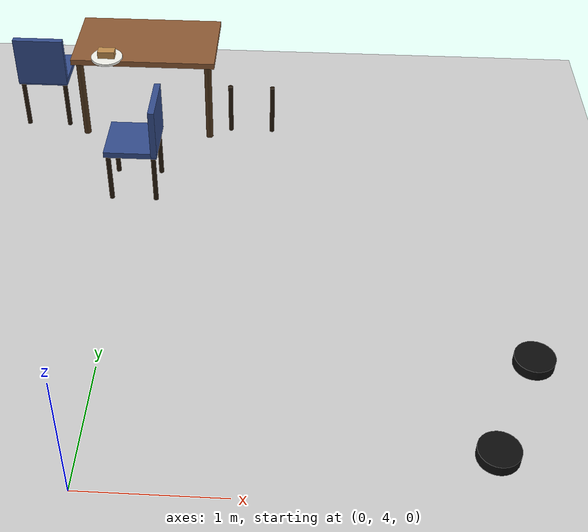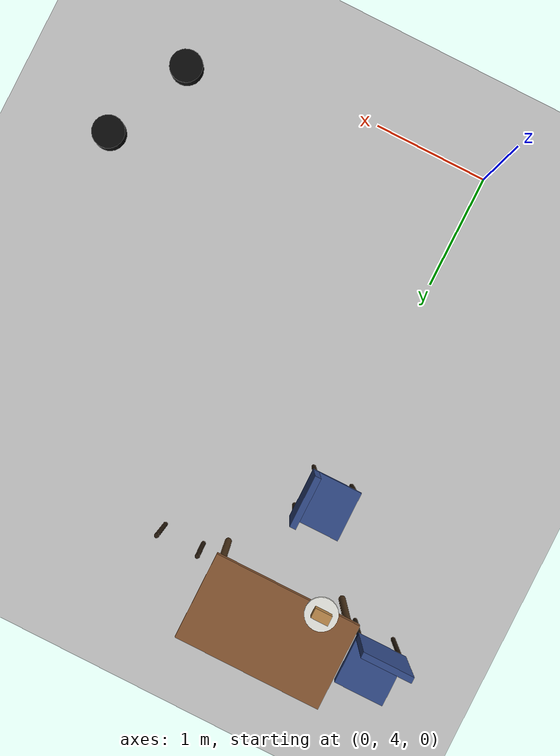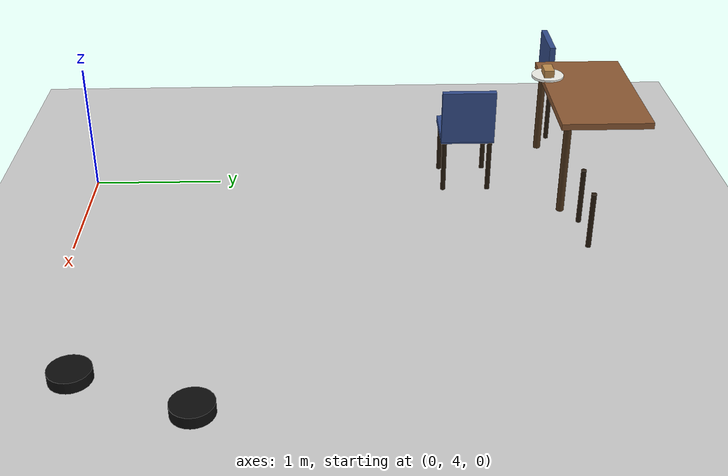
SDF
<sdf version="1.6">
 <world name="office_world">
  <include><uri>model://sun</uri></include>
  <include><uri>model://ground_plane</uri></include>
  <model name="table_2_top">
   <static>true</static>
   <pose>0 8 0.75 0 0 0.0</pose>
   <link name="link">
    <collision name="collision"><geometry><box><size>1.2 0.7 0.05</size></box></geometry></collision>
    <visual name="visual">
     <geometry><box><size>1.2 0.7 0.05</size></box></geometry>
     <material><ambient>0.55 0.35 0.2 1</ambient><diffuse>0.55 0.35 0.2 1</diffuse></material>
    </visual>
   </link>
  </model>
  <model name="table_2_leg_-1_-1">
   <static>true</static>
   <pose>-0.54 7.71 0.3625 0 0 0</pose>
   <link name="link">
    <collision name="collision">
     <geometry><cylinder><radius>0.03</radius><length>0.725</length></cylinder></geometry>
    </collision>
    <visual name="visual">
     <geometry><cylinder><radius>0.03</radius><length>0.725</length></cylinder></geometry>
     <material><ambient>0.3 0.2 0.1 1</ambient><diffuse>0.3 0.2 0.1 1</diffuse></material>
    </visual>
   </link>
  </model>
  <model name="table_2_leg_1_-1">
   <static>true</static>
   <pose>0.54 7.71 0.3625 0 0 0</pose>
   <link name="link">
    <collision name="collision">
     <geometry><cylinder><radius>0.03</radius><length>0.725</length></cylinder></geometry>
    </collision>
    <visual name="visual">
     <geometry><cylinder><radius>0.03</radius><length>0.725</length></cylinder></geometry>
     <material><ambient>0.3 0.2 0.1 1</ambient><diffuse>0.3 0.2 0.1 1</diffuse></material>
    </visual>
   </link>
  </model>
  <model name="chair_3_seat">
   <static>true</static>
   <pose>-0.9 8 0.45 0 0 1.5708</pose>
   <link name="link">
    <collision name="collision"><geometry><box><size>0.42 0.42 0.05</size></box></geometry></collision>
    <visual name="visual">
     <geometry><box><size>0.42 0.42 0.05</size></box></geometry>
     <material><ambient>0.2 0.3 0.55 1</ambient><diffuse>0.2 0.3 0.55 1</diffuse></material>
    </visual>
   </link>
  </model>
  <model name="chair_3_back">
   <static>true</static>
   <pose>-0.8999993020910304 7.810000000001282 0.65 0 0 1.5708</pose>
   <link name="link">
    <collision name="collision"><geometry><box><size>0.05 0.42 0.42</size></box></geometry></collision>
    <visual name="visual">
     <geometry><box><size>0.05 0.42 0.42</size></box></geometry>
     <material><ambient>0.2 0.3 0.55 1</ambient><diffuse>0.2 0.3 0.55 1</diffuse></material>
    </visual>
   </link>
  </model>
  <model name="chair_3_leg_-1_-1">
   <static>true</static>
   <pose>-0.7199993388242958 7.820000661178133 0.225 0 0 0</pose>
   <link name="link">
    <collision name="collision">
     <geometry><cylinder><radius>0.02</radius><length>0.45</length></cylinder></geometry>
    </collision>
    <visual name="visual">
     <geometry><cylinder><radius>0.02</radius><length>0.45</length></cylinder></geometry>
     <material><ambient>0.15 0.1 0.05 1</ambient><diffuse>0.15 0.1 0.05 1</diffuse></material>
    </visual>
   </link>
  </model>
  <model name="chair_3_leg_-1_1">
   <static>true</static>
   <pose>-1.0799993388218672 7.819999338824296 0.225 0 0 0</pose>
   <link name="link">
    <collision name="collision">
     <geometry><cylinder><radius>0.02</radius><length>0.45</length></cylinder></geometry>
    </collision>
    <visual name="visual">
     <geometry><cylinder><radius>0.02</radius><length>0.45</length></cylinder></geometry>
     <material><ambient>0.15 0.1 0.05 1</ambient><diffuse>0.15 0.1 0.05 1</diffuse></material>
    </visual>
   </link>
  </model>
  <model name="chair_4_leg_1_-1">
   <static>true</static>
   <pose>0.7199993388242958 7.820000661178133 0.225 0 0 0</pose>
   <link name="link">
    <collision name="collision">
     <geometry><cylinder><radius>0.02</radius><length>0.45</length></cylinder></geometry>
    </collision>
    <visual name="visual">
     <geometry><cylinder><radius>0.02</radius><length>0.45</length></cylinder></geometry>
     <material><ambient>0.15 0.1 0.05 1</ambient><diffuse>0.15 0.1 0.05 1</diffuse></material>
    </visual>
   </link>
  </model>
  <model name="chair_4_leg_1_1">
   <static>true</static>
   <pose>1.0799993388218672 7.819999338824296 0.225 0 0 0</pose>
   <link name="link">
    <collision name="collision">
     <geometry><cylinder><radius>0.02</radius><length>0.45</length></cylinder></geometry>
    </collision>
    <visual name="visual">
     <geometry><cylinder><radius>0.02</radius><length>0.45</length></cylinder></geometry>
     <material><ambient>0.15 0.1 0.05 1</ambient><diffuse>0.15 0.1 0.05 1</diffuse></material>
    </visual>
   </link>
  </model>
  <model name="chair_5_seat">
   <static>true</static>
   <pose>0 7.0 0.45 0 0 3.14159</pose>
   <link name="link">
    <collision name="collision"><geometry><box><size>0.42 0.42 0.05</size></box></geometry></collision>
    <visual name="visual">
     <geometry><box><size>0.42 0.42 0.05</size></box></geometry>
     <material><ambient>0.2 0.3 0.55 1</ambient><diffuse>0.2 0.3 0.55 1</diffuse></material>
    </visual>
   </link>
  </model>
  <model name="chair_5_back">
   <static>true</static>
   <pose>0.18999999999933107 6.9999994958179395 0.65 0 0 3.14159</pose>
   <link name="link">
    <collision name="collision"><geometry><box><size>0.05 0.42 0.42</size></box></geometry></collision>
    <visual name="visual">
     <geometry><box><size>0.05 0.42 0.42</size></box></geometry>
     <material><ambient>0.2 0.3 0.55 1</ambient><diffuse>0.2 0.3 0.55 1</diffuse></material>
    </visual>
   </link>
  </model>
  <model name="chair_5_leg_-1_-1">
   <static>true</static>
   <pose>0.18000047764552907 7.179999522353204 0.225 0 0 0</pose>
   <link name="link">
    <collision name="collision">
     <geometry><cylinder><radius>0.02</radius><length>0.45</length></cylinder></geometry>
    </collision>
    <visual name="visual">
     <geometry><cylinder><radius>0.02</radius><length>0.45</length></cylinder></geometry>
     <material><ambient>0.15 0.1 0.05 1</ambient><diffuse>0.15 0.1 0.05 1</diffuse></material>
    </visual>
   </link>
  </model>
  <model name="chair_5_leg_-1_1">
   <static>true</static>
   <pose>0.17999952235320343 6.819999522354471 0.225 0 0 0</pose>
   <link name="link">
    <collision name="collision">
     <geometry><cylinder><radius>0.02</radius><length>0.45</length></cylinder></geometry>
    </collision>
    <visual name="visual">
     <geometry><cylinder><radius>0.02</radius><length>0.45</length></cylinder></geometry>
     <material><ambient>0.15 0.1 0.05 1</ambient><diffuse>0.15 0.1 0.05 1</diffuse></material>
    </visual>
   </link>
  </model>
  <model name="chair_5_leg_1_-1">
   <static>true</static>
   <pose>-0.17999952235320343 7.180000477645529 0.225 0 0 0</pose>
   <link name="link">
    <collision name="collision">
     <geometry><cylinder><radius>0.02</radius><length>0.45</length></cylinder></geometry>
    </collision>
    <visual name="visual">
     <geometry><cylinder><radius>0.02</radius><length>0.45</length></cylinder></geometry>
     <material><ambient>0.15 0.1 0.05 1</ambient><diffuse>0.15 0.1 0.05 1</diffuse></material>
    </visual>
   </link>
  </model>
  <model name="chair_5_leg_1_1">
   <static>true</static>
   <pose>-0.18000047764552907 6.820000477646796 0.225 0 0 0</pose>
   <link name="link">
    <collision name="collision">
     <geometry><cylinder><radius>0.02</radius><length>0.45</length></cylinder></geometry>
    </collision>
    <visual name="visual">
     <geometry><cylinder><radius>0.02</radius><length>0.45</length></cylinder></geometry>
     <material><ambient>0.15 0.1 0.05 1</ambient><diffuse>0.15 0.1 0.05 1</diffuse></material>
    </visual>
   </link>
  </model>
  <model name="car_2_wheel_-1_-1">
   <static>true</static>
   <pose>2.6298607495287794 4.3273344707885455 0.14 0 0 0</pose>
   <link name="link">
    <collision name="collision">
     <geometry><cylinder><radius>0.14</radius><length>0.08</length></cylinder></geometry>
    </collision>
    <visual name="visual">
     <geometry><cylinder><radius>0.14</radius><length>0.08</length></cylinder></geometry>
     <material><ambient>0.05 0.05 0.05 1</ambient><diffuse>0.05 0.05 0.05 1</diffuse></material>
    </visual>
   </link>
  </model>
  <model name="car_2_wheel_-1_1">
   <static>true</static>
   <pose>2.956972157068046 5.10102570575097 0.14 0 0 0</pose>
   <link name="link">
    <collision name="collision">
     <geometry><cylinder><radius>0.14</radius><length>0.08</length></cylinder></geometry>
    </collision>
    <visual name="visual">
     <geometry><cylinder><radius>0.14</radius><length>0.08</length></cylinder></geometry>
     <material><ambient>0.05 0.05 0.05 1</ambient><diffuse>0.05 0.05 0.05 1</diffuse></material>
    </visual>
   </link>
  </model>
  <model name="food_4_plate">
   <static>true</static>
   <pose>-0.3 7.7 0.78 0 0 0</pose>
   <link name="link">
    <visual name="visual">
     <geometry><cylinder><radius>0.13</radius><length>0.02</length></cylinder></geometry>
     <material><ambient>0.95 0.95 0.92 1</ambient><diffuse>0.95 0.95 0.92 1</diffuse></material>
    </visual>
   </link>
  </model>
  <model name="food_4_item">
   <static>true</static>
   <pose>-0.3 7.7 0.8200000000000001 0 0 0.0</pose>
   <link name="link">
    <visual name="visual">
     <geometry><box><size>0.14 0.08 0.06</size></box></geometry>
     <material><ambient>0.75 0.55 0.3 1</ambient><diffuse>0.75 0.55 0.3 1</diffuse></material>
    </visual>
   </link>
  </model>
 </world>
</sdf>
